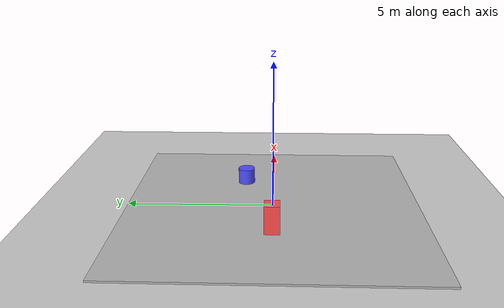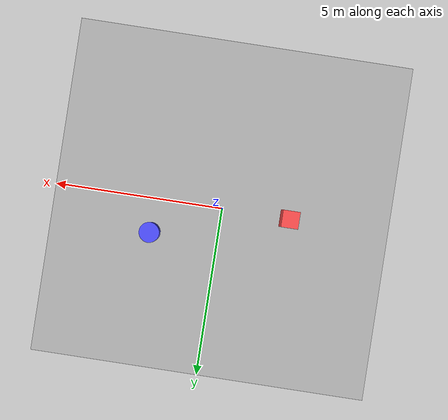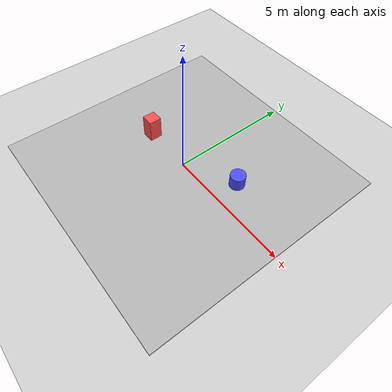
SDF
<?xml version="1.0" ?>
<sdf version="1.7">
  <world name="humanoid_room">
    <!-- Include the default outdoor world -->
    <include>
      <uri>model://ground_plane</uri>
    </include>

    <include>
      <uri>model://sun</uri>
    </include>

    <!-- Add a simple floor -->
    <model name="floor">
      <pose>0 0 0 0 0 0</pose>
      <static>true</static>
      <link name="floor_link">
        <collision name="floor_collision">
          <geometry>
            <box>
              <size>10 10 0.1</size>
            </box>
          </geometry>
        </collision>
        <visual name="floor_visual">
          <geometry>
            <box>
              <size>10 10 0.1</size>
            </box>
          </geometry>
          <material>
            <ambient>0.5 0.5 0.5 1</ambient>
            <diffuse>0.7 0.7 0.7 1</diffuse>
            <specular>0.1 0.1 0.1 1</specular>
          </material>
        </visual>
      </link>
    </model>

    <!-- Add some simple obstacles -->
    <model name="obstacle_1">
      <pose>-2 0 0.5 0 0 0</pose>
      <static>true</static>
      <link name="obstacle_1_link">
        <collision name="obstacle_1_collision">
          <geometry>
            <box>
              <size>0.5 0.5 1</size>
            </box>
          </geometry>
        </collision>
        <visual name="obstacle_1_visual">
          <geometry>
            <box>
              <size>0.5 0.5 1</size>
            </box>
          </geometry>
          <material>
            <ambient>0.8 0.2 0.2 1</ambient>
            <diffuse>1.0 0.3 0.3 1</diffuse>
            <specular>0.2 0.2 0.2 1</specular>
          </material>
        </visual>
      </link>
    </model>

    <model name="obstacle_2">
      <pose>2 1 0.3 0 0 0</pose>
      <static>true</static>
      <link name="obstacle_2_link">
        <collision name="obstacle_2_collision">
          <geometry>
            <cylinder>
              <radius>0.3</radius>
              <length>0.6</length>
            </cylinder>
          </geometry>
        </collision>
        <visual name="obstacle_2_visual">
          <geometry>
            <cylinder>
              <radius>0.3</radius>
              <length>0.6</length>
            </cylinder>
          </geometry>
          <material>
            <ambient>0.2 0.2 0.8 1</ambient>
            <diffuse>0.3 0.3 1.0 1</diffuse>
            <specular>0.2 0.2 0.2 1</specular>
          </material>
        </visual>
      </link>
    </model>

    <!-- Physics parameters -->
    <physics name="default_physics" type="ode">
      <gravity>0 0 -9.8</gravity>
      <ode>
        <solver>
          <type>quick</type>
          <iters>10</iters>
          <sor>1.3</sor>
        </solver>
        <constraints>
          <cfm>0.0</cfm>
          <erp>0.2</erp>
          <contact_max_correcting_vel>100.0</contact_max_correcting_vel>
          <contact_surface_layer>0.001</contact_surface_layer>
        </constraints>
      </ode>
    </physics>
  </world>
</sdf>
